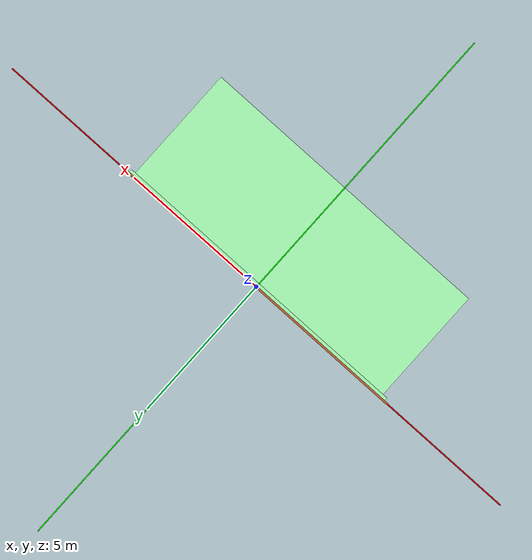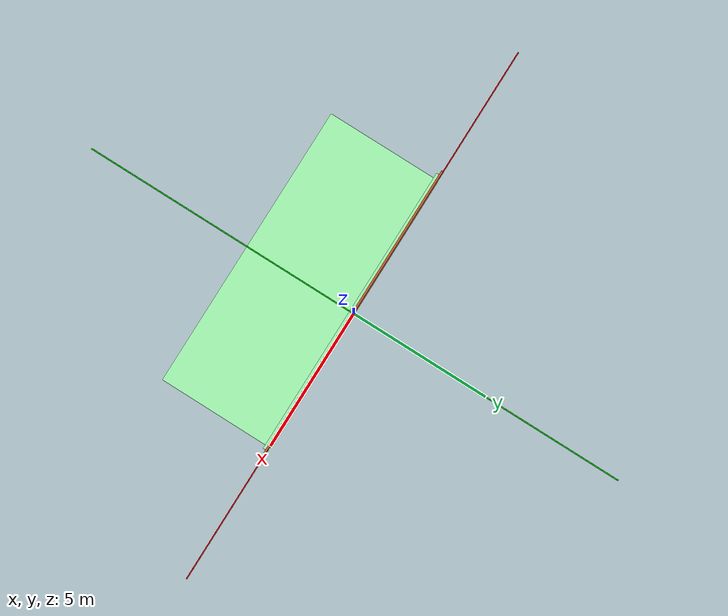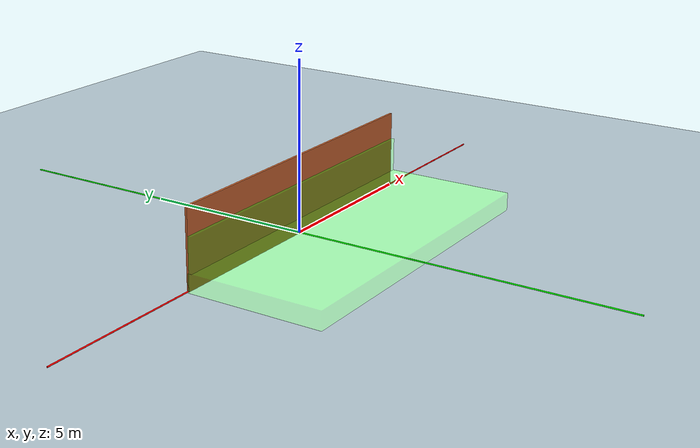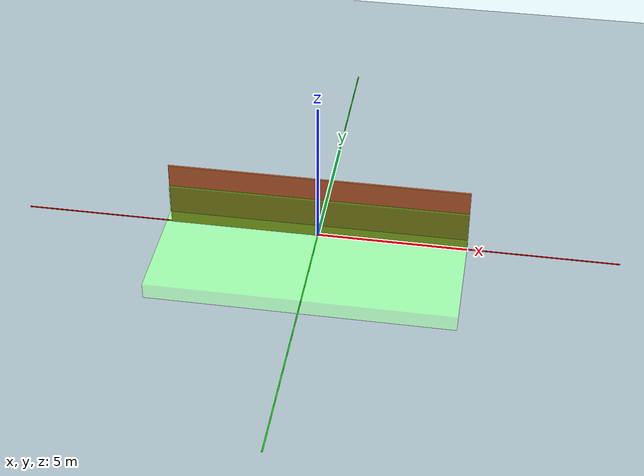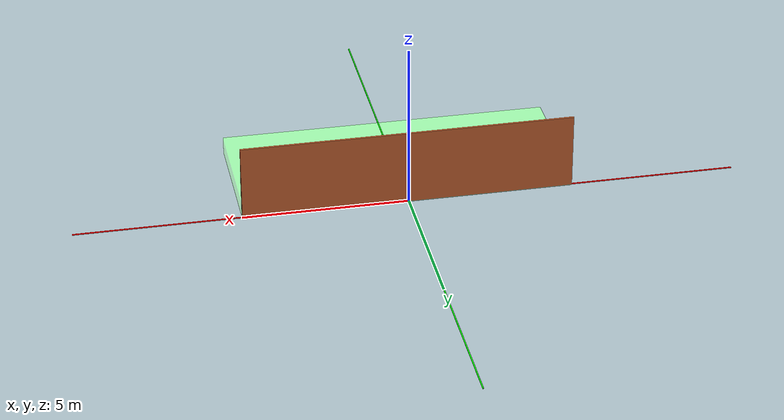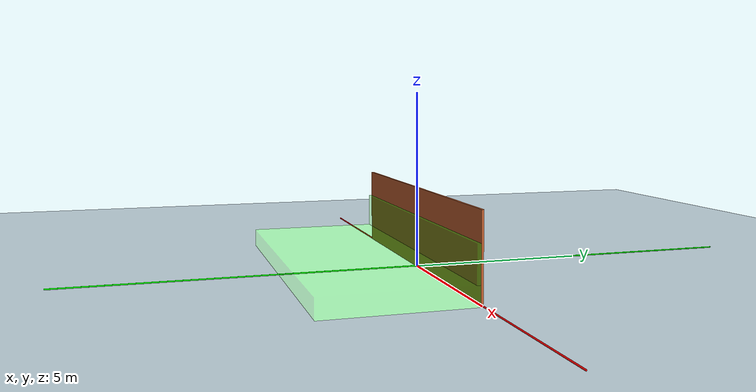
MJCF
<mujoco model="world">
    <compiler angle="radian" coordinate="local" inertiafromgeom="true" />

    <option timestep="0.002" gravity="0 0 -9.81">
    <flag warmstart="enable" />
    </option>
    <visual>
    <rgba haze="0.15 0.25 0.35 1" />
    <quality shadowsize="2048" />
    <map stiffness="700" shadowscale="0.5" fogstart="10" fogend="15" />
    </visual>
    <default>
    <geom
            contype="1"
            conaffinity="1"
            friction="3 3 3"
            solimp="0.995 0.995 0.001"
            solref="0.005 0.3"
        />
    </default>

  <worldbody>
  <frame pos="0 0 0">
    <!-- Checkered ground plane -->
    <geom
                name="ground"
                type="plane"
                size="20 20 0.1"
                material="grid"
                contype="1"
                conaffinity="1"
                friction="1.0 0.1 0.05"
            />

    <!-- Lighting setup -->
    <light pos="0 4 6" dir="0 -1 -1" diffuse="0.8 0.8 0.8" />
    <light pos="3 -2 4" dir="-1 1 -1" diffuse="0.4 0.4 0.6" />

<!-- Detection zone on far side of wall (behind the wall from rod's perspective) -->
      <geom
                name="far_side_detector"
                type="box"
                size="5 2 0.5"
                pos="0 -2 0.005"
                rgba="0 1 0 0.3"
                contype="1"
                conaffinity="1"
            />

<!-- Detection zone on wall -->
      <geom
                name="side_detector"
                type="box"
                size="5 0.05 1.5"
                pos="0 -0.08 0"
                rgba="0 1 0 0.3"
                contype="1"
                conaffinity="1"
            />

    Red X-axis (centered at origin, extends both ways)
    <geom
                name="x_axis"
                type="cylinder"
                size="0.02 10"
                pos="0 0 0.01"
                rgba="1 0 0 1"
                euler="0 1.5708 0"
                contype="0"
                conaffinity="0"
            />

    1.5m high rectangular wall
    <geom
                name="wall"
                type="box"
                size="5 0.03 1.15"
                pos="0 0 1.15"
                rgba="0.8 0.4 0.2 1"
            />

    <!-- Green Y-axis (centered at origin, extends both ways) -->
    <geom
                name="y_axis"
                type="cylinder"
                size="0.02 10"
                pos="0 0 0.01"
                rgba="0 1 0 1"
                euler="1.5708 0 0"
                contype="0"
                conaffinity="0"
            />

        </frame>
  </worldbody>

  <asset>
    <!-- Checkered texture with bigger squares -->
    <texture
            name="checker_texture"
            type="2d"
            builtin="checker"
            rgb1="0.3 0.3 0.3"
            rgb2="0.5 0.5 0.5"
            width="512"
            height="512"
        />

    <!-- Material with bigger squares -->
    <material
            name="checkerboard"
            texture="checker_texture"
            texrepeat="2 2"
            texuniform="true"
            reflectance="0.1"
        />
        <texture
            type="skybox"
            builtin="gradient"
            rgb1="0.4 0.6 0.8"
            rgb2="0.1 0.1 0.2"
            width="512"
            height="512"
        />
        <texture
            name="grid"
            type="2d"
            builtin="checker"
            rgb1="0.2 0.3 0.4"
            rgb2="0.1 0.2 0.3"
            width="512"
            height="512"
            mark="cross"
            markrgb="1 1 1"
        />
        <material
            name="grid"
            texture="grid"
            texrepeat="2 2"
            texuniform="true"
            reflectance="0.2"
        />
        <material
            name="body"
            rgba="0.8 0.6 0.4 1"
            specular="0.3"
            shininess="0.1"
        />
        <material name="foot" rgba="0.2 0.2 0.2 1" specular="0.1" />
        <material name="target" rgba="1 0.2 0.2 0.6" />
        <material name="landing" rgba="0.2 1 0.2 0.4" />
  </asset>

  <visual>
      <global offwidth="1280" offheight="720" />
  </visual>

  <statistic extent="10" center="0 0 1" />
</mujoco>
